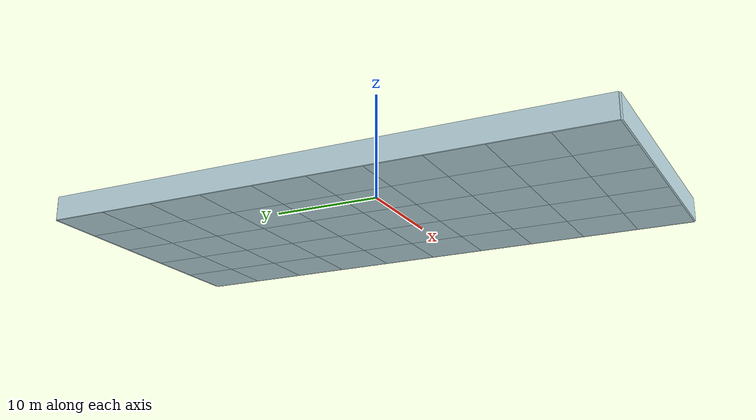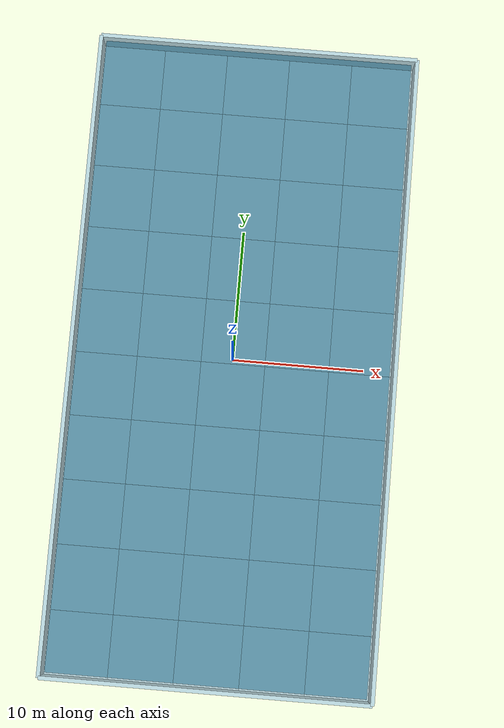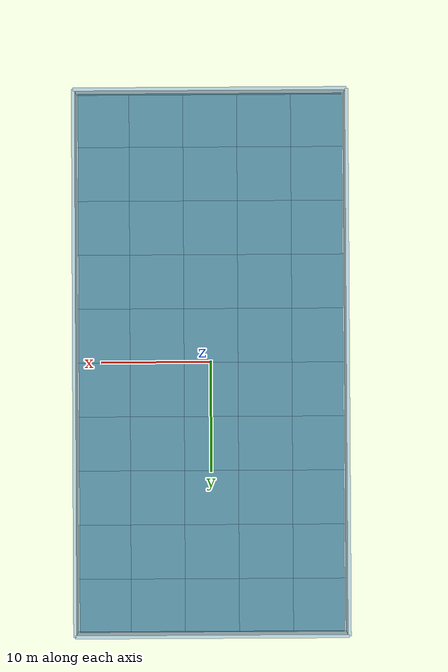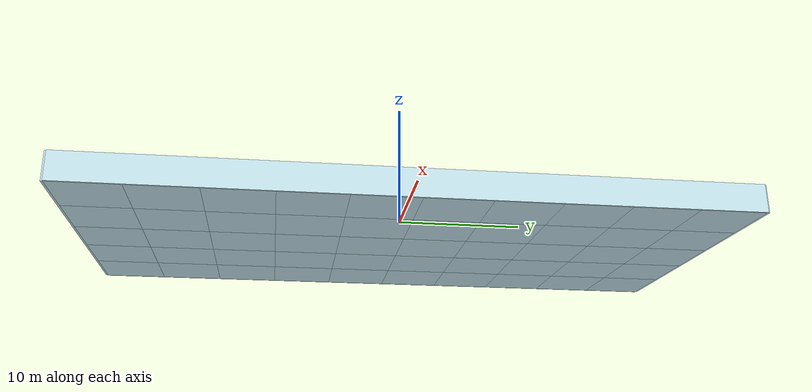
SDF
<?xml version="1.0"?>
<sdf version="1.6">
  <model name="pool">
    <static>true</static>

    <!-- Floor: one physics collision box, a tiled grid of visual-only
         squares on top so the PBR texture keeps a 1:1 aspect ratio instead
         of stretching across the full 25x50m span. -->
    <link name="floor_link">
      <collision name="floor_collision">
        <pose>0 0 -2.18 0 0 0</pose>
        <geometry>
          <box><size>25.0 50.0 0.1</size></box>
        </geometry>
        <surface>
          <friction><ode><mu>0.5</mu><mu2>0.5</mu2></ode></friction>
          <contact><ode/></contact>
          <bounce/>
        </surface>
      </collision>
      <visual name="floor_tile_1_visual">
        <pose>-10 -22.5 -2.13 0 0 0</pose>
        <geometry>
          <box><size>5 5 0.001</size></box>
        </geometry>
          <material>
            <ambient>0.55 0.7 0.75 1</ambient>
            <diffuse>0.7 0.82 0.85 1</diffuse>
            <specular>0.2 0.2 0.2 1</specular>
            <pbr>
              <metal>
                <albedo_map>model://pool/materials/textures/pool_floor.png</albedo_map>
                <normal_map>model://pool/materials/textures/pool_floor_normal.png</normal_map>
                <roughness_map>model://pool/materials/textures/pool_floor_roughness.png</roughness_map>
                <metalness>0.0</metalness>
              </metal>
            </pbr>
          </material>
      </visual>
      <visual name="floor_tile_2_visual">
        <pose>-10 -17.5 -2.13 0 0 0</pose>
        <geometry>
          <box><size>5 5 0.001</size></box>
        </geometry>
          <material>
            <ambient>0.55 0.7 0.75 1</ambient>
            <diffuse>0.7 0.82 0.85 1</diffuse>
            <specular>0.2 0.2 0.2 1</specular>
            <pbr>
              <metal>
                <albedo_map>model://pool/materials/textures/pool_floor.png</albedo_map>
                <normal_map>model://pool/materials/textures/pool_floor_normal.png</normal_map>
                <roughness_map>model://pool/materials/textures/pool_floor_roughness.png</roughness_map>
                <metalness>0.0</metalness>
              </metal>
            </pbr>
          </material>
      </visual>
      <visual name="floor_tile_3_visual">
        <pose>-10 -12.5 -2.13 0 0 0</pose>
        <geometry>
          <box><size>5 5 0.001</size></box>
        </geometry>
          <material>
            <ambient>0.55 0.7 0.75 1</ambient>
            <diffuse>0.7 0.82 0.85 1</diffuse>
            <specular>0.2 0.2 0.2 1</specular>
            <pbr>
              <metal>
                <albedo_map>model://pool/materials/textures/pool_floor.png</albedo_map>
                <normal_map>model://pool/materials/textures/pool_floor_normal.png</normal_map>
                <roughness_map>model://pool/materials/textures/pool_floor_roughness.png</roughness_map>
                <metalness>0.0</metalness>
              </metal>
            </pbr>
          </material>
      </visual>
      <visual name="floor_tile_4_visual">
        <pose>-10 -7.5 -2.13 0 0 0</pose>
        <geometry>
          <box><size>5 5 0.001</size></box>
        </geometry>
          <material>
            <ambient>0.55 0.7 0.75 1</ambient>
            <diffuse>0.7 0.82 0.85 1</diffuse>
            <specular>0.2 0.2 0.2 1</specular>
            <pbr>
              <metal>
                <albedo_map>model://pool/materials/textures/pool_floor.png</albedo_map>
                <normal_map>model://pool/materials/textures/pool_floor_normal.png</normal_map>
                <roughness_map>model://pool/materials/textures/pool_floor_roughness.png</roughness_map>
                <metalness>0.0</metalness>
              </metal>
            </pbr>
          </material>
      </visual>
      <visual name="floor_tile_5_visual">
        <pose>-10 -2.5 -2.13 0 0 0</pose>
        <geometry>
          <box><size>5 5 0.001</size></box>
        </geometry>
          <material>
            <ambient>0.55 0.7 0.75 1</ambient>
            <diffuse>0.7 0.82 0.85 1</diffuse>
            <specular>0.2 0.2 0.2 1</specular>
            <pbr>
              <metal>
                <albedo_map>model://pool/materials/textures/pool_floor.png</albedo_map>
                <normal_map>model://pool/materials/textures/pool_floor_normal.png</normal_map>
                <roughness_map>model://pool/materials/textures/pool_floor_roughness.png</roughness_map>
                <metalness>0.0</metalness>
              </metal>
            </pbr>
          </material>
      </visual>
      <visual name="floor_tile_6_visual">
        <pose>-10 2.5 -2.13 0 0 0</pose>
        <geometry>
          <box><size>5 5 0.001</size></box>
        </geometry>
          <material>
            <ambient>0.55 0.7 0.75 1</ambient>
            <diffuse>0.7 0.82 0.85 1</diffuse>
            <specular>0.2 0.2 0.2 1</specular>
            <pbr>
              <metal>
                <albedo_map>model://pool/materials/textures/pool_floor.png</albedo_map>
                <normal_map>model://pool/materials/textures/pool_floor_normal.png</normal_map>
                <roughness_map>model://pool/materials/textures/pool_floor_roughness.png</roughness_map>
                <metalness>0.0</metalness>
              </metal>
            </pbr>
          </material>
      </visual>
      <visual name="floor_tile_7_visual">
        <pose>-10 7.5 -2.13 0 0 0</pose>
        <geometry>
          <box><size>5 5 0.001</size></box>
        </geometry>
          <material>
            <ambient>0.55 0.7 0.75 1</ambient>
            <diffuse>0.7 0.82 0.85 1</diffuse>
            <specular>0.2 0.2 0.2 1</specular>
            <pbr>
              <metal>
                <albedo_map>model://pool/materials/textures/pool_floor.png</albedo_map>
                <normal_map>model://pool/materials/textures/pool_floor_normal.png</normal_map>
                <roughness_map>model://pool/materials/textures/pool_floor_roughness.png</roughness_map>
                <metalness>0.0</metalness>
              </metal>
            </pbr>
          </material>
      </visual>
      <visual name="floor_tile_8_visual">
        <pose>-10 12.5 -2.13 0 0 0</pose>
        <geometry>
          <box><size>5 5 0.001</size></box>
        </geometry>
          <material>
            <ambient>0.55 0.7 0.75 1</ambient>
            <diffuse>0.7 0.82 0.85 1</diffuse>
            <specular>0.2 0.2 0.2 1</specular>
            <pbr>
              <metal>
                <albedo_map>model://pool/materials/textures/pool_floor.png</albedo_map>
                <normal_map>model://pool/materials/textures/pool_floor_normal.png</normal_map>
                <roughness_map>model://pool/materials/textures/pool_floor_roughness.png</roughness_map>
                <metalness>0.0</metalness>
              </metal>
            </pbr>
          </material>
      </visual>
      <visual name="floor_tile_9_visual">
        <pose>-10 17.5 -2.13 0 0 0</pose>
        <geometry>
          <box><size>5 5 0.001</size></box>
        </geometry>
          <material>
            <ambient>0.55 0.7 0.75 1</ambient>
            <diffuse>0.7 0.82 0.85 1</diffuse>
            <specular>0.2 0.2 0.2 1</specular>
            <pbr>
              <metal>
                <albedo_map>model://pool/materials/textures/pool_floor.png</albedo_map>
                <normal_map>model://pool/materials/textures/pool_floor_normal.png</normal_map>
                <roughness_map>model://pool/materials/textures/pool_floor_roughness.png</roughness_map>
                <metalness>0.0</metalness>
              </metal>
            </pbr>
          </material>
      </visual>
      <visual name="floor_tile_10_visual">
        <pose>-10 22.5 -2.13 0 0 0</pose>
        <geometry>
          <box><size>5 5 0.001</size></box>
        </geometry>
          <material>
            <ambient>0.55 0.7 0.75 1</ambient>
            <diffuse>0.7 0.82 0.85 1</diffuse>
            <specular>0.2 0.2 0.2 1</specular>
            <pbr>
              <metal>
                <albedo_map>model://pool/materials/textures/pool_floor.png</albedo_map>
                <normal_map>model://pool/materials/textures/pool_floor_normal.png</normal_map>
                <roughness_map>model://pool/materials/textures/pool_floor_roughness.png</roughness_map>
                <metalness>0.0</metalness>
              </metal>
            </pbr>
          </material>
      </visual>
      <visual name="floor_tile_11_visual">
        <pose>-5 -22.5 -2.13 0 0 0</pose>
        <geometry>
          <box><size>5 5 0.001</size></box>
        </geometry>
          <material>
            <ambient>0.55 0.7 0.75 1</ambient>
            <diffuse>0.7 0.82 0.85 1</diffuse>
            <specular>0.2 0.2 0.2 1</specular>
            <pbr>
              <metal>
                <albedo_map>model://pool/materials/textures/pool_floor.png</albedo_map>
                <normal_map>model://pool/materials/textures/pool_floor_normal.png</normal_map>
                <roughness_map>model://pool/materials/textures/pool_floor_roughness.png</roughness_map>
                <metalness>0.0</metalness>
              </metal>
            </pbr>
          </material>
      </visual>
      <visual name="floor_tile_12_visual">
        <pose>-5 -17.5 -2.13 0 0 0</pose>
        <geometry>
          <box><size>5 5 0.001</size></box>
        </geometry>
          <material>
            <ambient>0.55 0.7 0.75 1</ambient>
            <diffuse>0.7 0.82 0.85 1</diffuse>
            <specular>0.2 0.2 0.2 1</specular>
            <pbr>
              <metal>
                <albedo_map>model://pool/materials/textures/pool_floor.png</albedo_map>
                <normal_map>model://pool/materials/textures/pool_floor_normal.png</normal_map>
                <roughness_map>model://pool/materials/textures/pool_floor_roughness.png</roughness_map>
                <metalness>0.0</metalness>
              </metal>
            </pbr>
          </material>
      </visual>
      <visual name="floor_tile_13_visual">
        <pose>-5 -12.5 -2.13 0 0 0</pose>
        <geometry>
          <box><size>5 5 0.001</size></box>
        </geometry>
          <material>
            <ambient>0.55 0.7 0.75 1</ambient>
            <diffuse>0.7 0.82 0.85 1</diffuse>
            <specular>0.2 0.2 0.2 1</specular>
            <pbr>
              <metal>
                <albedo_map>model://pool/materials/textures/pool_floor.png</albedo_map>
                <normal_map>model://pool/materials/textures/pool_floor_normal.png</normal_map>
                <roughness_map>model://pool/materials/textures/pool_floor_roughness.png</roughness_map>
                <metalness>0.0</metalness>
              </metal>
            </pbr>
          </material>
      </visual>
      <visual name="floor_tile_14_visual">
        <pose>-5 -7.5 -2.13 0 0 0</pose>
        <geometry>
          <box><size>5 5 0.001</size></box>
        </geometry>
          <material>
            <ambient>0.55 0.7 0.75 1</ambient>
            <diffuse>0.7 0.82 0.85 1</diffuse>
            <specular>0.2 0.2 0.2 1</specular>
            <pbr>
              <metal>
                <albedo_map>model://pool/materials/textures/pool_floor.png</albedo_map>
                <normal_map>model://pool/materials/textures/pool_floor_normal.png</normal_map>
                <roughness_map>model://pool/materials/textures/pool_floor_roughness.png</roughness_map>
                <metalness>0.0</metalness>
              </metal>
            </pbr>
          </material>
      </visual>
      <visual name="floor_tile_15_visual">
        <pose>-5 -2.5 -2.13 0 0 0</pose>
        <geometry>
          <box><size>5 5 0.001</size></box>
        </geometry>
          <material>
            <ambient>0.55 0.7 0.75 1</ambient>
            <diffuse>0.7 0.82 0.85 1</diffuse>
            <specular>0.2 0.2 0.2 1</specular>
            <pbr>
              <metal>
                <albedo_map>model://pool/materials/textures/pool_floor.png</albedo_map>
                <normal_map>model://pool/materials/textures/pool_floor_normal.png</normal_map>
                <roughness_map>model://pool/materials/textures/pool_floor_roughness.png</roughness_map>
                <metalness>0.0</metalness>
              </metal>
            </pbr>
          </material>
      </visual>
      <visual name="floor_tile_16_visual">
        <pose>-5 2.5 -2.13 0 0 0</pose>
        <geometry>
          <box><size>5 5 0.001</size></box>
        </geometry>
          <material>
            <ambient>0.55 0.7 0.75 1</ambient>
            <diffuse>0.7 0.82 0.85 1</diffuse>
            <specular>0.2 0.2 0.2 1</specular>
            <pbr>
              <metal>
                <albedo_map>model://pool/materials/textures/pool_floor.png</albedo_map>
                <normal_map>model://pool/materials/textures/pool_floor_normal.png</normal_map>
                <roughness_map>model://pool/materials/textures/pool_floor_roughness.png</roughness_map>
                <metalness>0.0</metalness>
              </metal>
            </pbr>
          </material>
      </visual>
      <visual name="floor_tile_17_visual">
        <pose>-5 7.5 -2.13 0 0 0</pose>
        <geometry>
          <box><size>5 5 0.001</size></box>
        </geometry>
          <material>
            <ambient>0.55 0.7 0.75 1</ambient>
            <diffuse>0.7 0.82 0.85 1</diffuse>
            <specular>0.2 0.2 0.2 1</specular>
            <pbr>
              <metal>
                <albedo_map>model://pool/materials/textures/pool_floor.png</albedo_map>
                <normal_map>model://pool/materials/textures/pool_floor_normal.png</normal_map>
                <roughness_map>model://pool/materials/textures/pool_floor_roughness.png</roughness_map>
                <metalness>0.0</metalness>
              </metal>
            </pbr>
          </material>
      </visual>
      <visual name="floor_tile_18_visual">
        <pose>-5 12.5 -2.13 0 0 0</pose>
        <geometry>
          <box><size>5 5 0.001</size></box>
        </geometry>
          <material>
            <ambient>0.55 0.7 0.75 1</ambient>
            <diffuse>0.7 0.82 0.85 1</diffuse>
            <specular>0.2 0.2 0.2 1</specular>
            <pbr>
              <metal>
                <albedo_map>model://pool/materials/textures/pool_floor.png</albedo_map>
                <normal_map>model://pool/materials/textures/pool_floor_normal.png</normal_map>
                <roughness_map>model://pool/materials/textures/pool_floor_roughness.png</roughness_map>
                <metalness>0.0</metalness>
              </metal>
            </pbr>
          </material>
      </visual>
      <visual name="floor_tile_19_visual">
        <pose>-5 17.5 -2.13 0 0 0</pose>
        <geometry>
          <box><size>5 5 0.001</size></box>
        </geometry>
          <material>
            <ambient>0.55 0.7 0.75 1</ambient>
            <diffuse>0.7 0.82 0.85 1</diffuse>
            <specular>0.2 0.2 0.2 1</specular>
            <pbr>
              <metal>
                <albedo_map>model://pool/materials/textures/pool_floor.png</albedo_map>
                <normal_map>model://pool/materials/textures/pool_floor_normal.png</normal_map>
                <roughness_map>model://pool/materials/textures/pool_floor_roughness.png</roughness_map>
                <metalness>0.0</metalness>
              </metal>
            </pbr>
          </material>
      </visual>
      <visual name="floor_tile_20_visual">
        <pose>-5 22.5 -2.13 0 0 0</pose>
        <geometry>
          <box><size>5 5 0.001</size></box>
        </geometry>
          <material>
            <ambient>0.55 0.7 0.75 1</ambient>
            <diffuse>0.7 0.82 0.85 1</diffuse>
            <specular>0.2 0.2 0.2 1</specular>
            <pbr>
              <metal>
                <albedo_map>model://pool/materials/textures/pool_floor.png</albedo_map>
                <normal_map>model://pool/materials/textures/pool_floor_normal.png</normal_map>
                <roughness_map>model://pool/materials/textures/pool_floor_roughness.png</roughness_map>
                <metalness>0.0</metalness>
              </metal>
            </pbr>
          </material>
      </visual>
      <visual name="floor_tile_21_visual">
        <pose>0 -22.5 -2.13 0 0 0</pose>
        <geometry>
          <box><size>5 5 0.001</size></box>
        </geometry>
          <material>
            <ambient>0.55 0.7 0.75 1</ambient>
            <diffuse>0.7 0.82 0.85 1</diffuse>
            <specular>0.2 0.2 0.2 1</specular>
            <pbr>
              <metal>
                <albedo_map>model://pool/materials/textures/pool_floor.png</albedo_map>
                <normal_map>model://pool/materials/textures/pool_floor_normal.png</normal_map>
                <roughness_map>model://pool/materials/textures/pool_floor_roughness.png</roughness_map>
                <metalness>0.0</metalness>
              </metal>
            </pbr>
          </material>
      </visual>
      <visual name="floor_tile_22_visual">
        <pose>0 -17.5 -2.13 0 0 0</pose>
        <geometry>
          <box><size>5 5 0.001</size></box>
        </geometry>
          <material>
            <ambient>0.55 0.7 0.75 1</ambient>
            <diffuse>0.7 0.82 0.85 1</diffuse>
            <specular>0.2 0.2 0.2 1</specular>
            <pbr>
              <metal>
                <albedo_map>model://pool/materials/textures/pool_floor.png</albedo_map>
                <normal_map>model://pool/materials/textures/pool_floor_normal.png</normal_map>
                <roughness_map>model://pool/materials/textures/pool_floor_roughness.png</roughness_map>
                <metalness>0.0</metalness>
              </metal>
            </pbr>
          </material>
      </visual>
      <visual name="floor_tile_23_visual">
        <pose>0 -12.5 -2.13 0 0 0</pose>
        <geometry>
          <box><size>5 5 0.001</size></box>
        </geometry>
          <material>
            <ambient>0.55 0.7 0.75 1</ambient>
            <diffuse>0.7 0.82 0.85 1</diffuse>
            <specular>0.2 0.2 0.2 1</specular>
            <pbr>
              <metal>
                <albedo_map>model://pool/materials/textures/pool_floor.png</albedo_map>
                <normal_map>model://pool/materials/textures/pool_floor_normal.png</normal_map>
                <roughness_map>model://pool/materials/textures/pool_floor_roughness.png</roughness_map>
                <metalness>0.0</metalness>
              </metal>
            </pbr>
          </material>
      </visual>
      <visual name="floor_tile_24_visual">
        <pose>0 -7.5 -2.13 0 0 0</pose>
        <geometry>
          <box><size>5 5 0.001</size></box>
        </geometry>
          <material>
            <ambient>0.55 0.7 0.75 1</ambient>
            <diffuse>0.7 0.82 0.85 1</diffuse>
            <specular>0.2 0.2 0.2 1</specular>
            <pbr>
              <metal>
                <albedo_map>model://pool/materials/textures/pool_floor.png</albedo_map>
                <normal_map>model://pool/materials/textures/pool_floor_normal.png</normal_map>
                <roughness_map>model://pool/materials/textures/pool_floor_roughness.png</roughness_map>
                <metalness>0.0</metalness>
              </metal>
            </pbr>
          </material>
      </visual>
      <visual name="floor_tile_25_visual">
        <pose>0 -2.5 -2.13 0 0 0</pose>
        <geometry>
          <box><size>5 5 0.001</size></box>
        </geometry>
          <material>
            <ambient>0.55 0.7 0.75 1</ambient>
            <diffuse>0.7 0.82 0.85 1</diffuse>
            <specular>0.2 0.2 0.2 1</specular>
            <pbr>
              <metal>
                <albedo_map>model://pool/materials/textures/pool_floor.png</albedo_map>
                <normal_map>model://pool/materials/textures/pool_floor_normal.png</normal_map>
                <roughness_map>model://pool/materials/textures/pool_floor_roughness.png</roughness_map>
                <metalness>0.0</metalness>
              </metal>
            </pbr>
          </material>
      </visual>
      <visual name="floor_tile_26_visual">
        <pose>0 2.5 -2.13 0 0 0</pose>
        <geometry>
          <box><size>5 5 0.001</size></box>
        </geometry>
          <material>
            <ambient>0.55 0.7 0.75 1</ambient>
            <diffuse>0.7 0.82 0.85 1</diffuse>
            <specular>0.2 0.2 0.2 1</specular>
            <pbr>
              <metal>
                <albedo_map>model://pool/materials/textures/pool_floor.png</albedo_map>
                <normal_map>model://pool/materials/textures/pool_floor_normal.png</normal_map>
                <roughness_map>model://pool/materials/textures/pool_floor_roughness.png</roughness_map>
                <metalness>0.0</metalness>
              </metal>
            </pbr>
          </material>
      </visual>
      <visual name="floor_tile_27_visual">
        <pose>0 7.5 -2.13 0 0 0</pose>
        <geometry>
          <box><size>5 5 0.001</size></box>
        </geometry>
          <material>
            <ambient>0.55 0.7 0.75 1</ambient>
            <diffuse>0.7 0.82 0.85 1</diffuse>
            <specular>0.2 0.2 0.2 1</specular>
            <pbr>
              <metal>
                <albedo_map>model://pool/materials/textures/pool_floor.png</albedo_map>
                <normal_map>model://pool/materials/textures/pool_floor_normal.png</normal_map>
                <roughness_map>model://pool/materials/textures/pool_floor_roughness.png</roughness_map>
                <metalness>0.0</metalness>
              </metal>
            </pbr>
          </material>
      </visual>
      <visual name="floor_tile_28_visual">
        <pose>0 12.5 -2.13 0 0 0</pose>
        <geometry>
          <box><size>5 5 0.001</size></box>
        </geometry>
          <material>
            <ambient>0.55 0.7 0.75 1</ambient>
            <diffuse>0.7 0.82 0.85 1</diffuse>
            <specular>0.2 0.2 0.2 1</specular>
            <pbr>
              <metal>
                <albedo_map>model://pool/materials/textures/pool_floor.png</albedo_map>
                <normal_map>model://pool/materials/textures/pool_floor_normal.png</normal_map>
                <roughness_map>model://pool/materials/textures/pool_floor_roughness.png</roughness_map>
                <metalness>0.0</metalness>
              </metal>
            </pbr>
          </material>
      </visual>
      <visual name="floor_tile_29_visual">
        <pose>0 17.5 -2.13 0 0 0</pose>
        <geometry>
          <box><size>5 5 0.001</size></box>
        </geometry>
          <material>
            <ambient>0.55 0.7 0.75 1</ambient>
            <diffuse>0.7 0.82 0.85 1</diffuse>
            <specular>0.2 0.2 0.2 1</specular>
            <pbr>
              <metal>
                <albedo_map>model://pool/materials/textures/pool_floor.png</albedo_map>
                <normal_map>model://pool/materials/textures/pool_floor_normal.png</normal_map>
                <roughness_map>model://pool/materials/textures/pool_floor_roughness.png</roughness_map>
                <metalness>0.0</metalness>
              </metal>
            </pbr>
          </material>
      </visual>
      <visual name="floor_tile_30_visual">
        <pose>0 22.5 -2.13 0 0 0</pose>
        <geometry>
          <box><size>5 5 0.001</size></box>
        </geometry>
          <material>
            <ambient>0.55 0.7 0.75 1</ambient>
            <diffuse>0.7 0.82 0.85 1</diffuse>
            <specular>0.2 0.2 0.2 1</specular>
            <pbr>
              <metal>
                <albedo_map>model://pool/materials/textures/pool_floor.png</albedo_map>
                <normal_map>model://pool/materials/textures/pool_floor_normal.png</normal_map>
                <roughness_map>model://pool/materials/textures/pool_floor_roughness.png</roughness_map>
                <metalness>0.0</metalness>
              </metal>
            </pbr>
          </material>
      </visual>
      <visual name="floor_tile_31_visual">
        <pose>5 -22.5 -2.13 0 0 0</pose>
        <geometry>
          <box><size>5 5 0.001</size></box>
        </geometry>
          <material>
            <ambient>0.55 0.7 0.75 1</ambient>
            <diffuse>0.7 0.82 0.85 1</diffuse>
            <specular>0.2 0.2 0.2 1</specular>
            <pbr>
              <metal>
                <albedo_map>model://pool/materials/textures/pool_floor.png</albedo_map>
                <normal_map>model://pool/materials/textures/pool_floor_normal.png</normal_map>
                <roughness_map>model://pool/materials/textures/pool_floor_roughness.png</roughness_map>
                <metalness>0.0</metalness>
              </metal>
            </pbr>
          </material>
      </visual>
      <visual name="floor_tile_32_visual">
        <pose>5 -17.5 -2.13 0 0 0</pose>
        <geometry>
          <box><size>5 5 0.001</size></box>
        </geometry>
          <material>
            <ambient>0.55 0.7 0.75 1</ambient>
            <diffuse>0.7 0.82 0.85 1</diffuse>
            <specular>0.2 0.2 0.2 1</specular>
            <pbr>
              <metal>
                <albedo_map>model://pool/materials/textures/pool_floor.png</albedo_map>
                <normal_map>model://pool/materials/textures/pool_floor_normal.png</normal_map>
                <roughness_map>model://pool/materials/textures/pool_floor_roughness.png</roughness_map>
                <metalness>0.0</metalness>
              </metal>
            </pbr>
          </material>
      </visual>
      <visual name="floor_tile_33_visual">
        <pose>5 -12.5 -2.13 0 0 0</pose>
        <geometry>
          <box><size>5 5 0.001</size></box>
        </geometry>
          <material>
            <ambient>0.55 0.7 0.75 1</ambient>
            <diffuse>0.7 0.82 0.85 1</diffuse>
            <specular>0.2 0.2 0.2 1</specular>
            <pbr>
              <metal>
                <albedo_map>model://pool/materials/textures/pool_floor.png</albedo_map>
                <normal_map>model://pool/materials/textures/pool_floor_normal.png</normal_map>
                <roughness_map>model://pool/materials/textures/pool_floor_roughness.png</roughness_map>
                <metalness>0.0</metalness>
              </metal>
            </pbr>
          </material>
      </visual>
      <visual name="floor_tile_34_visual">
        <pose>5 -7.5 -2.13 0 0 0</pose>
        <geometry>
          <box><size>5 5 0.001</size></box>
        </geometry>
          <material>
            <ambient>0.55 0.7 0.75 1</ambient>
            <diffuse>0.7 0.82 0.85 1</diffuse>
            <specular>0.2 0.2 0.2 1</specular>
            <pbr>
              <metal>
                <albedo_map>model://pool/materials/textures/pool_floor.png</albedo_map>
                <normal_map>model://pool/materials/textures/pool_floor_normal.png</normal_map>
                <roughness_map>model://pool/materials/textures/pool_floor_roughness.png</roughness_map>
                <metalness>0.0</metalness>
              </metal>
            </pbr>
          </material>
      </visual>
      <visual name="floor_tile_35_visual">
        <pose>5 -2.5 -2.13 0 0 0</pose>
        <geometry>
          <box><size>5 5 0.001</size></box>
        </geometry>
          <material>
            <ambient>0.55 0.7 0.75 1</ambient>
            <diffuse>0.7 0.82 0.85 1</diffuse>
            <specular>0.2 0.2 0.2 1</specular>
            <pbr>
              <metal>
                <albedo_map>model://pool/materials/textures/pool_floor.png</albedo_map>
                <normal_map>model://pool/materials/textures/pool_floor_normal.png</normal_map>
                <roughness_map>model://pool/materials/textures/pool_floor_roughness.png</roughness_map>
                <metalness>0.0</metalness>
              </metal>
            </pbr>
          </material>
      </visual>
      <visual name="floor_tile_36_visual">
        <pose>5 2.5 -2.13 0 0 0</pose>
        <geometry>
          <box><size>5 5 0.001</size></box>
        </geometry>
          <material>
            <ambient>0.55 0.7 0.75 1</ambient>
            <diffuse>0.7 0.82 0.85 1</diffuse>
            <specular>0.2 0.2 0.2 1</specular>
            <pbr>
              <metal>
                <albedo_map>model://pool/materials/textures/pool_floor.png</albedo_map>
                <normal_map>model://pool/materials/textures/pool_floor_normal.png</normal_map>
                <roughness_map>model://pool/materials/textures/pool_floor_roughness.png</roughness_map>
                <metalness>0.0</metalness>
              </metal>
            </pbr>
          </material>
      </visual>
      <visual name="floor_tile_37_visual">
        <pose>5 7.5 -2.13 0 0 0</pose>
        <geometry>
          <box><size>5 5 0.001</size></box>
        </geometry>
          <material>
            <ambient>0.55 0.7 0.75 1</ambient>
            <diffuse>0.7 0.82 0.85 1</diffuse>
            <specular>0.2 0.2 0.2 1</specular>
            <pbr>
              <metal>
                <albedo_map>model://pool/materials/textures/pool_floor.png</albedo_map>
                <normal_map>model://pool/materials/textures/pool_floor_normal.png</normal_map>
                <roughness_map>model://pool/materials/textures/pool_floor_roughness.png</roughness_map>
                <metalness>0.0</metalness>
              </metal>
            </pbr>
          </material>
      </visual>
      <visual name="floor_tile_38_visual">
        <pose>5 12.5 -2.13 0 0 0</pose>
        <geometry>
          <box><size>5 5 0.001</size></box>
        </geometry>
          <material>
            <ambient>0.55 0.7 0.75 1</ambient>
            <diffuse>0.7 0.82 0.85 1</diffuse>
            <specular>0.2 0.2 0.2 1</specular>
            <pbr>
              <metal>
                <albedo_map>model://pool/materials/textures/pool_floor.png</albedo_map>
                <normal_map>model://pool/materials/textures/pool_floor_normal.png</normal_map>
                <roughness_map>model://pool/materials/textures/pool_floor_roughness.png</roughness_map>
                <metalness>0.0</metalness>
              </metal>
            </pbr>
          </material>
      </visual>
      <visual name="floor_tile_39_visual">
        <pose>5 17.5 -2.13 0 0 0</pose>
        <geometry>
          <box><size>5 5 0.001</size></box>
        </geometry>
          <material>
            <ambient>0.55 0.7 0.75 1</ambient>
            <diffuse>0.7 0.82 0.85 1</diffuse>
            <specular>0.2 0.2 0.2 1</specular>
            <pbr>
              <metal>
                <albedo_map>model://pool/materials/textures/pool_floor.png</albedo_map>
                <normal_map>model://pool/materials/textures/pool_floor_normal.png</normal_map>
                <roughness_map>model://pool/materials/textures/pool_floor_roughness.png</roughness_map>
                <metalness>0.0</metalness>
              </metal>
            </pbr>
          </material>
      </visual>
      <visual name="floor_tile_40_visual">
        <pose>5 22.5 -2.13 0 0 0</pose>
        <geometry>
          <box><size>5 5 0.001</size></box>
        </geometry>
          <material>
            <ambient>0.55 0.7 0.75 1</ambient>
            <diffuse>0.7 0.82 0.85 1</diffuse>
            <specular>0.2 0.2 0.2 1</specular>
            <pbr>
              <metal>
                <albedo_map>model://pool/materials/textures/pool_floor.png</albedo_map>
                <normal_map>model://pool/materials/textures/pool_floor_normal.png</normal_map>
                <roughness_map>model://pool/materials/textures/pool_floor_roughness.png</roughness_map>
                <metalness>0.0</metalness>
              </metal>
            </pbr>
          </material>
      </visual>
      <visual name="floor_tile_41_visual">
        <pose>10 -22.5 -2.13 0 0 0</pose>
        <geometry>
          <box><size>5 5 0.001</size></box>
        </geometry>
          <material>
            <ambient>0.55 0.7 0.75 1</ambient>
            <diffuse>0.7 0.82 0.85 1</diffuse>
            <specular>0.2 0.2 0.2 1</specular>
            <pbr>
              <metal>
                <albedo_map>model://pool/materials/textures/pool_floor.png</albedo_map>
                <normal_map>model://pool/materials/textures/pool_floor_normal.png</normal_map>
                <roughness_map>model://pool/materials/textures/pool_floor_roughness.png</roughness_map>
                <metalness>0.0</metalness>
              </metal>
            </pbr>
          </material>
      </visual>
      <visual name="floor_tile_42_visual">
        <pose>10 -17.5 -2.13 0 0 0</pose>
        <geometry>
          <box><size>5 5 0.001</size></box>
        </geometry>
          <material>
            <ambient>0.55 0.7 0.75 1</ambient>
            <diffuse>0.7 0.82 0.85 1</diffuse>
            <specular>0.2 0.2 0.2 1</specular>
            <pbr>
              <metal>
                <albedo_map>model://pool/materials/textures/pool_floor.png</albedo_map>
                <normal_map>model://pool/materials/textures/pool_floor_normal.png</normal_map>
                <roughness_map>model://pool/materials/textures/pool_floor_roughness.png</roughness_map>
                <metalness>0.0</metalness>
              </metal>
            </pbr>
          </material>
      </visual>
      <visual name="floor_tile_43_visual">
        <pose>10 -12.5 -2.13 0 0 0</pose>
        <geometry>
          <box><size>5 5 0.001</size></box>
        </geometry>
          <material>
            <ambient>0.55 0.7 0.75 1</ambient>
            <diffuse>0.7 0.82 0.85 1</diffuse>
            <specular>0.2 0.2 0.2 1</specular>
            <pbr>
              <metal>
                <albedo_map>model://pool/materials/textures/pool_floor.png</albedo_map>
                <normal_map>model://pool/materials/textures/pool_floor_normal.png</normal_map>
                <roughness_map>model://pool/materials/textures/pool_floor_roughness.png</roughness_map>
                <metalness>0.0</metalness>
              </metal>
            </pbr>
          </material>
      </visual>
      <visual name="floor_tile_44_visual">
        <pose>10 -7.5 -2.13 0 0 0</pose>
        <geometry>
          <box><size>5 5 0.001</size></box>
        </geometry>
          <material>
            <ambient>0.55 0.7 0.75 1</ambient>
            <diffuse>0.7 0.82 0.85 1</diffuse>
            <specular>0.2 0.2 0.2 1</specular>
            <pbr>
              <metal>
                <albedo_map>model://pool/materials/textures/pool_floor.png</albedo_map>
                <normal_map>model://pool/materials/textures/pool_floor_normal.png</normal_map>
                <roughness_map>model://pool/materials/textures/pool_floor_roughness.png</roughness_map>
                <metalness>0.0</metalness>
              </metal>
            </pbr>
          </material>
      </visual>
      <visual name="floor_tile_45_visual">
        <pose>10 -2.5 -2.13 0 0 0</pose>
        <geometry>
          <box><size>5 5 0.001</size></box>
        </geometry>
          <material>
            <ambient>0.55 0.7 0.75 1</ambient>
            <diffuse>0.7 0.82 0.85 1</diffuse>
            <specular>0.2 0.2 0.2 1</specular>
            <pbr>
              <metal>
                <albedo_map>model://pool/materials/textures/pool_floor.png</albedo_map>
                <normal_map>model://pool/materials/textures/pool_floor_normal.png</normal_map>
                <roughness_map>model://pool/materials/textures/pool_floor_roughness.png</roughness_map>
                <metalness>0.0</metalness>
              </metal>
            </pbr>
          </material>
      </visual>
      <visual name="floor_tile_46_visual">
        <pose>10 2.5 -2.13 0 0 0</pose>
        <geometry>
          <box><size>5 5 0.001</size></box>
        </geometry>
          <material>
            <ambient>0.55 0.7 0.75 1</ambient>
            <diffuse>0.7 0.82 0.85 1</diffuse>
            <specular>0.2 0.2 0.2 1</specular>
            <pbr>
              <metal>
                <albedo_map>model://pool/materials/textures/pool_floor.png</albedo_map>
                <normal_map>model://pool/materials/textures/pool_floor_normal.png</normal_map>
                <roughness_map>model://pool/materials/textures/pool_floor_roughness.png</roughness_map>
                <metalness>0.0</metalness>
              </metal>
            </pbr>
          </material>
      </visual>
      <visual name="floor_tile_47_visual">
        <pose>10 7.5 -2.13 0 0 0</pose>
        <geometry>
          <box><size>5 5 0.001</size></box>
        </geometry>
          <material>
            <ambient>0.55 0.7 0.75 1</ambient>
            <diffuse>0.7 0.82 0.85 1</diffuse>
            <specular>0.2 0.2 0.2 1</specular>
            <pbr>
              <metal>
                <albedo_map>model://pool/materials/textures/pool_floor.png</albedo_map>
                <normal_map>model://pool/materials/textures/pool_floor_normal.png</normal_map>
                <roughness_map>model://pool/materials/textures/pool_floor_roughness.png</roughness_map>
                <metalness>0.0</metalness>
              </metal>
            </pbr>
          </material>
      </visual>
      <visual name="floor_tile_48_visual">
        <pose>10 12.5 -2.13 0 0 0</pose>
        <geometry>
          <box><size>5 5 0.001</size></box>
        </geometry>
          <material>
            <ambient>0.55 0.7 0.75 1</ambient>
            <diffuse>0.7 0.82 0.85 1</diffuse>
            <specular>0.2 0.2 0.2 1</specular>
            <pbr>
              <metal>
                <albedo_map>model://pool/materials/textures/pool_floor.png</albedo_map>
                <normal_map>model://pool/materials/textures/pool_floor_normal.png</normal_map>
                <roughness_map>model://pool/materials/textures/pool_floor_roughness.png</roughness_map>
                <metalness>0.0</metalness>
              </metal>
            </pbr>
          </material>
      </visual>
      <visual name="floor_tile_49_visual">
        <pose>10 17.5 -2.13 0 0 0</pose>
        <geometry>
          <box><size>5 5 0.001</size></box>
        </geometry>
          <material>
            <ambient>0.55 0.7 0.75 1</ambient>
            <diffuse>0.7 0.82 0.85 1</diffuse>
            <specular>0.2 0.2 0.2 1</specular>
            <pbr>
              <metal>
                <albedo_map>model://pool/materials/textures/pool_floor.png</albedo_map>
                <normal_map>model://pool/materials/textures/pool_floor_normal.png</normal_map>
                <roughness_map>model://pool/materials/textures/pool_floor_roughness.png</roughness_map>
                <metalness>0.0</metalness>
              </metal>
            </pbr>
          </material>
      </visual>
      <visual name="floor_tile_50_visual">
        <pose>10 22.5 -2.13 0 0 0</pose>
        <geometry>
          <box><size>5 5 0.001</size></box>
        </geometry>
          <material>
            <ambient>0.55 0.7 0.75 1</ambient>
            <diffuse>0.7 0.82 0.85 1</diffuse>
            <specular>0.2 0.2 0.2 1</specular>
            <pbr>
              <metal>
                <albedo_map>model://pool/materials/textures/pool_floor.png</albedo_map>
                <normal_map>model://pool/materials/textures/pool_floor_normal.png</normal_map>
                <roughness_map>model://pool/materials/textures/pool_floor_roughness.png</roughness_map>
                <metalness>0.0</metalness>
              </metal>
            </pbr>
          </material>
      </visual>
    </link>

    <!-- Walls: one collision box per side, one visual per side (tiled floor
         gets the careful treatment because the downward camera stares at it;
         walls are rarely seen up close). -->
    <link name="walls_link">
      <collision name="wall_north_collision">
        <pose>0 25 -1.065 0 0 0</pose>
        <geometry>
          <box><size>25 0.3 2.13</size></box>
        </geometry>
        <surface>
          <friction><ode><mu>0.5</mu><mu2>0.5</mu2></ode></friction>
          <contact><ode/></contact>
          <bounce/>
        </surface>
      </collision>
      <visual name="wall_north_visual">
        <pose>0 25 -1.065 0 0 0</pose>
        <geometry>
          <box><size>25 0.3 2.13</size></box>
        </geometry>
          <material>
            <ambient>0.6 0.75 0.8 1</ambient>
            <diffuse>0.75 0.87 0.9 1</diffuse>
            <specular>0.2 0.2 0.2 1</specular>
            <pbr>
              <metal>
                <albedo_map>model://pool/materials/textures/pool_tile.png</albedo_map>
                <normal_map>model://pool/materials/textures/pool_tile_normal.png</normal_map>
                <roughness_map>model://pool/materials/textures/pool_tile_roughness.png</roughness_map>
                <metalness>0.0</metalness>
              </metal>
            </pbr>
          </material>
      </visual>
      <collision name="wall_south_collision">
        <pose>0 -25 -1.065 0 0 0</pose>
        <geometry>
          <box><size>25 0.3 2.13</size></box>
        </geometry>
        <surface>
          <friction><ode><mu>0.5</mu><mu2>0.5</mu2></ode></friction>
          <contact><ode/></contact>
          <bounce/>
        </surface>
      </collision>
      <visual name="wall_south_visual">
        <pose>0 -25 -1.065 0 0 0</pose>
        <geometry>
          <box><size>25 0.3 2.13</size></box>
        </geometry>
          <material>
            <ambient>0.6 0.75 0.8 1</ambient>
            <diffuse>0.75 0.87 0.9 1</diffuse>
            <specular>0.2 0.2 0.2 1</specular>
            <pbr>
              <metal>
                <albedo_map>model://pool/materials/textures/pool_tile.png</albedo_map>
                <normal_map>model://pool/materials/textures/pool_tile_normal.png</normal_map>
                <roughness_map>model://pool/materials/textures/pool_tile_roughness.png</roughness_map>
                <metalness>0.0</metalness>
              </metal>
            </pbr>
          </material>
      </visual>
      <collision name="wall_west_collision">
        <pose>-12.5 0 -1.065 0 0 0</pose>
        <geometry>
          <box><size>0.3 50 2.13</size></box>
        </geometry>
        <surface>
          <friction><ode><mu>0.5</mu><mu2>0.5</mu2></ode></friction>
          <contact><ode/></contact>
          <bounce/>
        </surface>
      </collision>
      <visual name="wall_west_visual">
        <pose>-12.5 0 -1.065 0 0 0</pose>
        <geometry>
          <box><size>0.3 50 2.13</size></box>
        </geometry>
          <material>
            <ambient>0.6 0.75 0.8 1</ambient>
            <diffuse>0.75 0.87 0.9 1</diffuse>
            <specular>0.2 0.2 0.2 1</specular>
            <pbr>
              <metal>
                <albedo_map>model://pool/materials/textures/pool_tile.png</albedo_map>
                <normal_map>model://pool/materials/textures/pool_tile_normal.png</normal_map>
                <roughness_map>model://pool/materials/textures/pool_tile_roughness.png</roughness_map>
                <metalness>0.0</metalness>
              </metal>
            </pbr>
          </material>
      </visual>
      <collision name="wall_east_collision">
        <pose>12.5 0 -1.065 0 0 0</pose>
        <geometry>
          <box><size>0.3 50 2.13</size></box>
        </geometry>
        <surface>
          <friction><ode><mu>0.5</mu><mu2>0.5</mu2></ode></friction>
          <contact><ode/></contact>
          <bounce/>
        </surface>
      </collision>
      <visual name="wall_east_visual">
        <pose>12.5 0 -1.065 0 0 0</pose>
        <geometry>
          <box><size>0.3 50 2.13</size></box>
        </geometry>
          <material>
            <ambient>0.6 0.75 0.8 1</ambient>
            <diffuse>0.75 0.87 0.9 1</diffuse>
            <specular>0.2 0.2 0.2 1</specular>
            <pbr>
              <metal>
                <albedo_map>model://pool/materials/textures/pool_tile.png</albedo_map>
                <normal_map>model://pool/materials/textures/pool_tile_normal.png</normal_map>
                <roughness_map>model://pool/materials/textures/pool_tile_roughness.png</roughness_map>
                <metalness>0.0</metalness>
              </metal>
            </pbr>
          </material>
      </visual>
    </link>

    <!-- Water: a semi-transparent tinted volume from the floor to the
         surface (z=0, matching the world's graded_buoyancy density
         switch), inset slightly from the walls to avoid z-fighting. -->
    <link name="water_link">
      <visual name="water_visual">
        <pose>0 0 -1.065 0 0 0</pose>
        <geometry>
          <box><size>24.1 49.1 2.13</size></box>
        </geometry>
        <transparency>0.55</transparency>
        <material>
          <ambient>0.0 0.25 0.35 1</ambient>
          <diffuse>0.0 0.35 0.5 1</diffuse>
          <specular>0.3 0.4 0.4 1</specular>
        </material>
      </visual>
    </link>

  </model>
</sdf>
